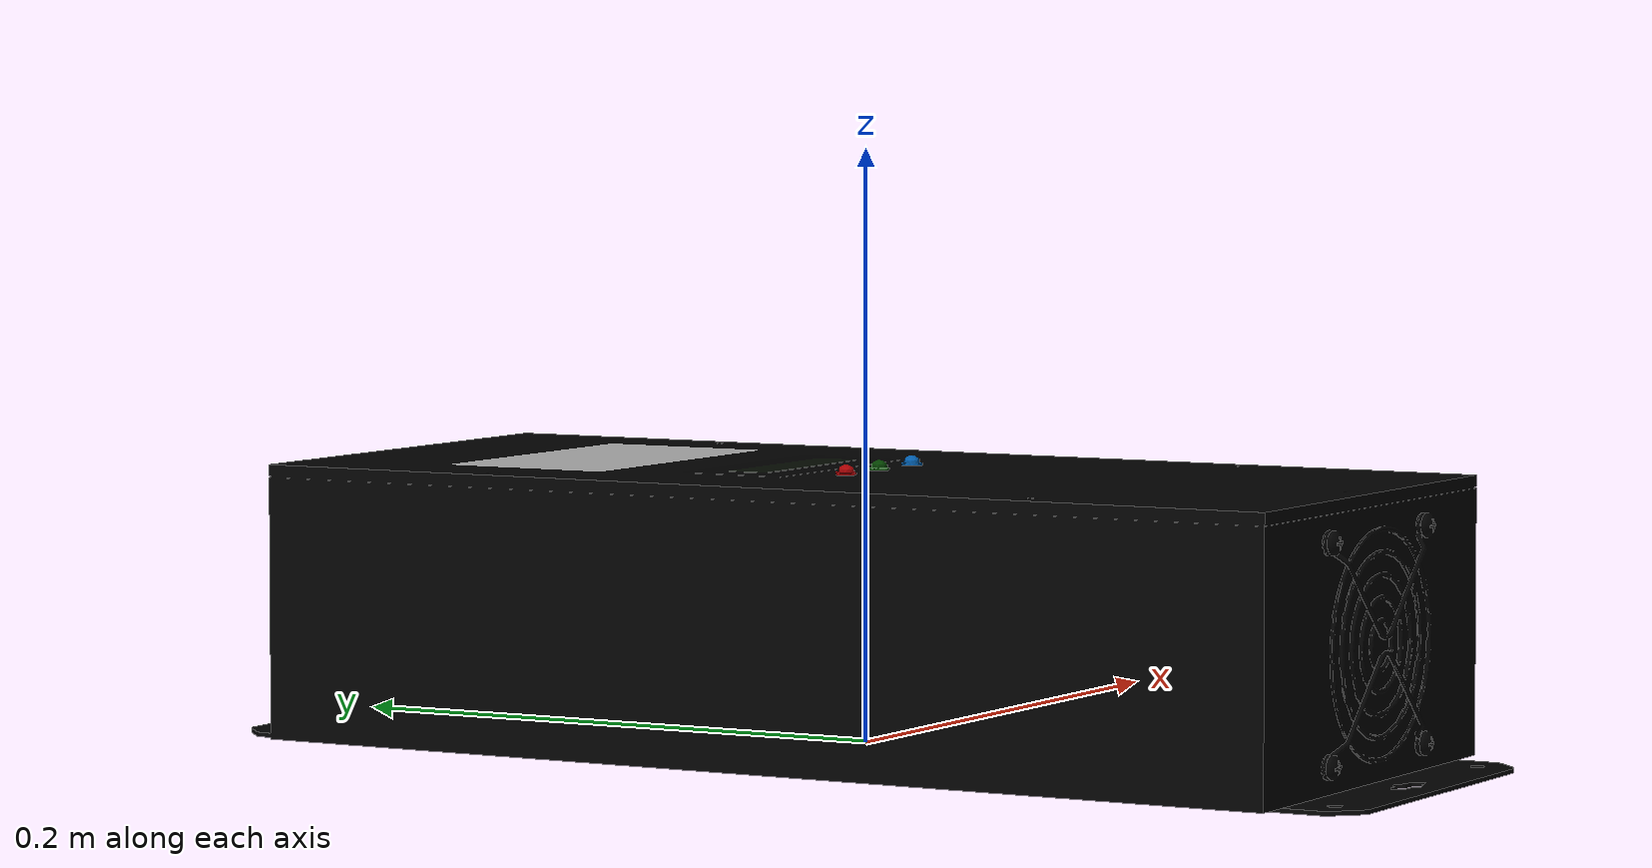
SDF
<?xml version="1.0" ?>
<sdf version="1.6">
  <model name="TR100">
    <static>true</static>
    <link name="link">
      <collision name="collision">
        <geometry>
          <mesh>
            <scale>1 1 1</scale>
            <uri>model://../meshes/TR100.dae</uri>
          </mesh>
        </geometry>
      </collision>
      <visual name="visual">
        <geometry>
          <mesh>
            <scale>1 1 1</scale>
            <uri>model://../meshes/TR100.dae</uri>
          </mesh>
        </geometry>
      </visual>
    </link>
  </model>
</sdf>
